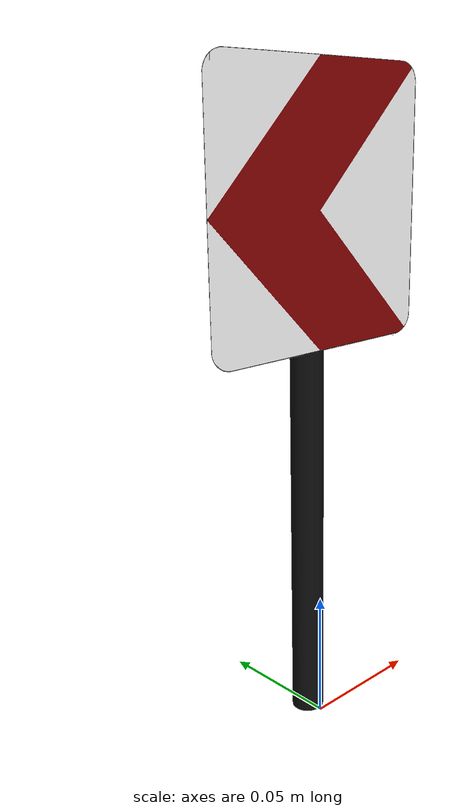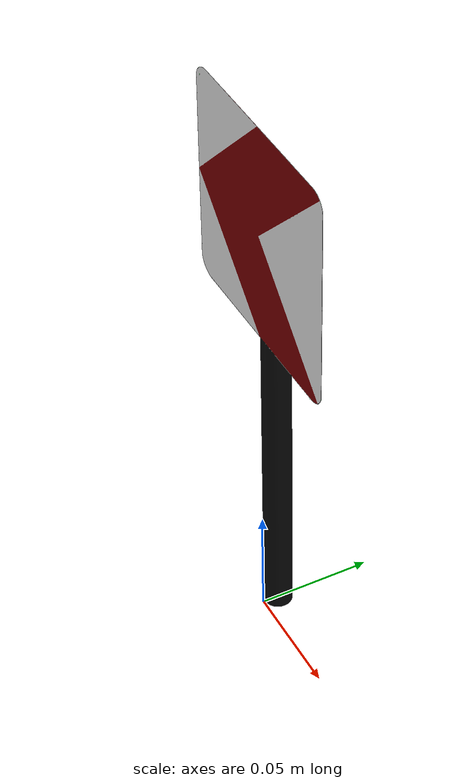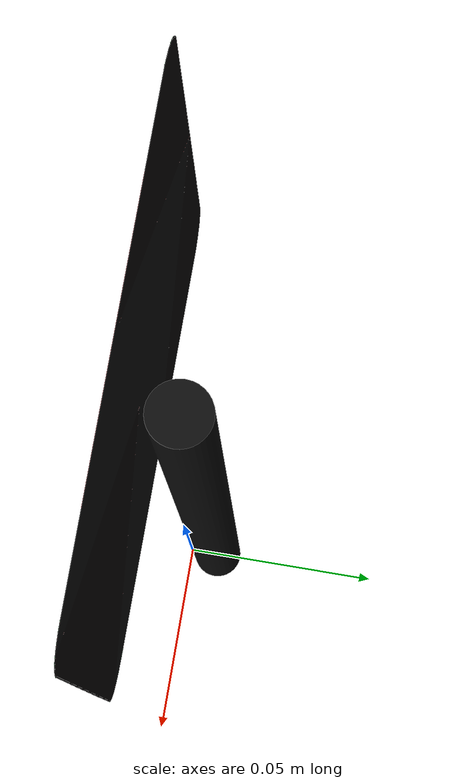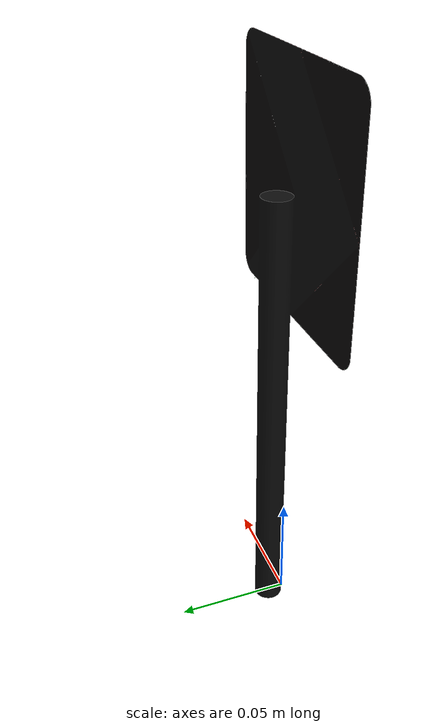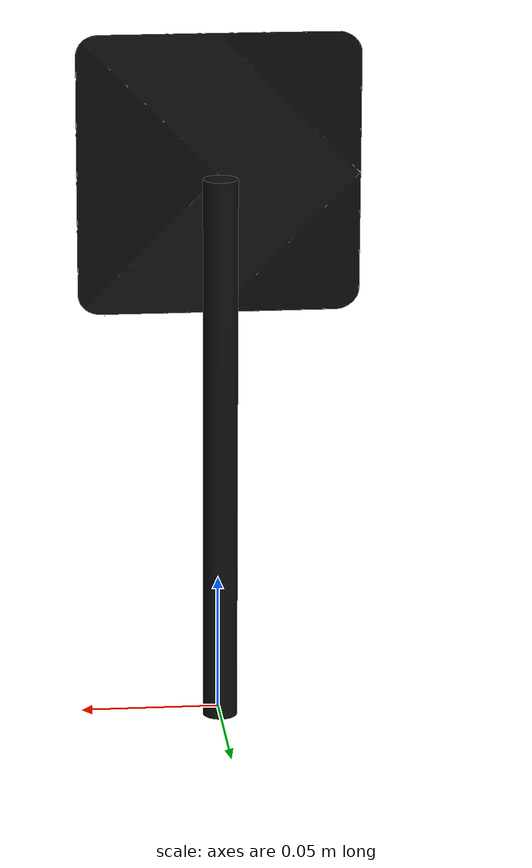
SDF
<?xml version="1.0"?>
<sdf version="1.5">
    <model name="Sharp_turn_left_short">
      <pose>0 0 0  0 0 0</pose>
      <static>true</static>
      <link name="body">
        <visual name="visual">
          <geometry>
            <mesh>
	      <uri>model://meshes/Sharp_turn_left_short.dae</uri>
	      <scale>1 1 1</scale>
	    </mesh>
          </geometry>
        </visual>
      </link>
    </model>
</sdf>
